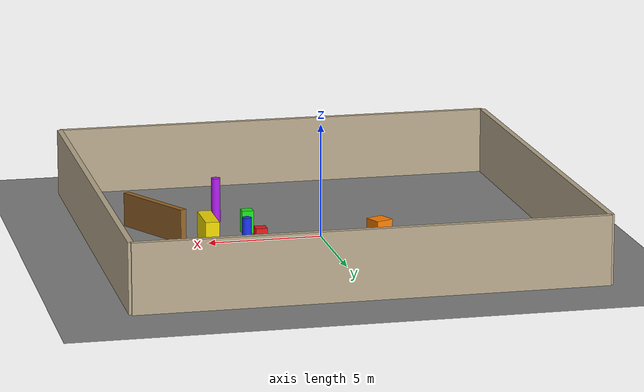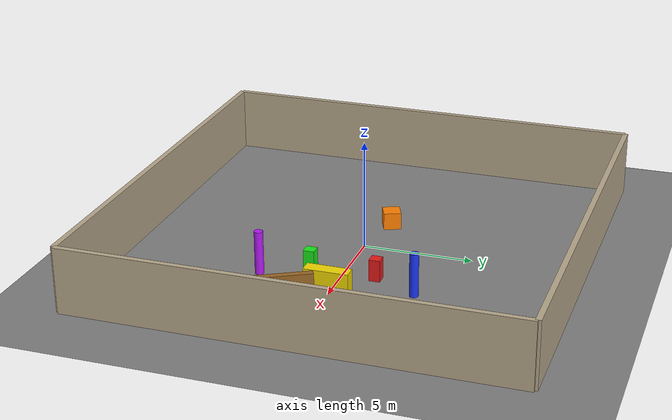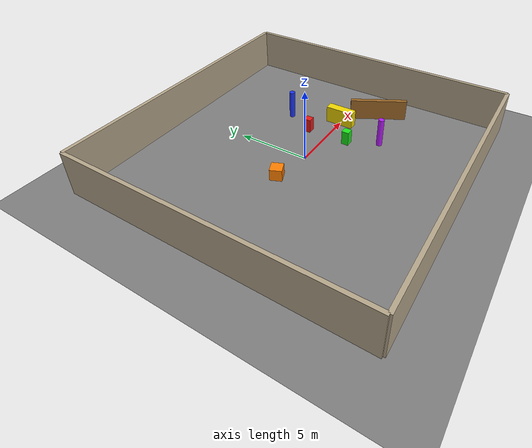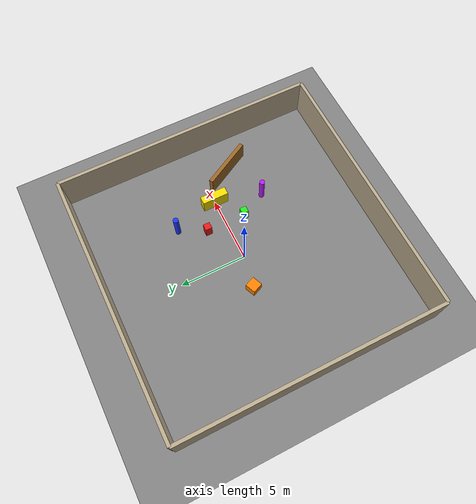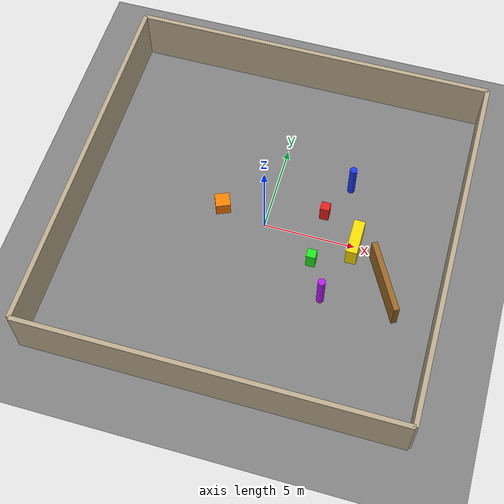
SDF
<?xml version="1.0"?>
<sdf version="1.8">
  <world name="warehouse">

    <!-- Physics -->
    <physics name="1ms" type="ignored">
      <max_step_size>0.001</max_step_size>
      <real_time_factor>1.0</real_time_factor>
    </physics>

    <!-- Required world plugins -->
    <plugin filename="gz-sim-physics-system"
            name="gz::sim::systems::Physics"/>
    <plugin filename="gz-sim-user-commands-system"
            name="gz::sim::systems::UserCommands"/>
    <plugin filename="gz-sim-scene-broadcaster-system"
            name="gz::sim::systems::SceneBroadcaster"/>
    <plugin filename="gz-sim-imu-system"
            name="gz::sim::systems::Imu"/>

    <!-- Sensors system (ogre, not ogre2, for VM/WSL stability) -->
    <plugin filename="gz-sim-sensors-system"
            name="gz::sim::systems::Sensors">
      <render_engine>ogre</render_engine>
    </plugin>

    <!-- Sun -->
    <light name="sun" type="directional">
      <cast_shadows>true</cast_shadows>
      <pose>0 0 10 0 0 0</pose>
      <diffuse>0.9 0.9 0.9 1</diffuse>
      <specular>0.3 0.3 0.3 1</specular>
      <direction>-0.5 0.1 -0.9</direction>
    </light>

    <!-- Ambient fill light so shadows aren't too dark -->
    <light name="ambient_fill" type="directional">
      <pose>0 0 8 0 0 0</pose>
      <diffuse>0.4 0.4 0.4 1</diffuse>
      <specular>0.0 0.0 0.0 1</specular>
      <direction>0.5 -0.1 -0.9</direction>
      <cast_shadows>false</cast_shadows>
    </light>

    <!-- ═══════════════════════════════════════
         GROUND PLANE  –  concrete grey
    ═══════════════════════════════════════ -->
    <model name="ground_plane">
      <static>true</static>
      <link name="link">
        <collision name="collision">
          <geometry>
            <plane><normal>0 0 1</normal><size>50 50</size></plane>
          </geometry>
          <surface>
            <friction><ode><mu>1.0</mu><mu2>1.0</mu2></ode></friction>
          </surface>
        </collision>
        <visual name="visual">
          <geometry>
            <plane><normal>0 0 1</normal><size>50 50</size></plane>
          </geometry>
          <material>
            <ambient>0.38 0.38 0.38 1</ambient>
            <diffuse>0.5 0.5 0.5 1</diffuse>
            <specular>0.1 0.1 0.1 1</specular>
          </material>
        </visual>
      </link>
    </model>

    <!-- ═══════════════════════════════════════
         WAREHOUSE WALLS
    ═══════════════════════════════════════ -->

    <!-- North wall -->
    <model name="wall_north">
      <static>true</static>
      <pose>0 10 1.5 0 0 0</pose>
      <link name="link">
        <collision name="collision">
          <geometry><box><size>20 0.25 3.0</size></box></geometry>
        </collision>
        <visual name="visual">
          <geometry><box><size>20 0.25 3.0</size></box></geometry>
          <material>
            <ambient>0.62 0.56 0.45 1</ambient>
            <diffuse>0.72 0.66 0.55 1</diffuse>
          </material>
        </visual>
      </link>
    </model>

    <!-- South wall -->
    <model name="wall_south">
      <static>true</static>
      <pose>0 -10 1.5 0 0 0</pose>
      <link name="link">
        <collision name="collision">
          <geometry><box><size>20 0.25 3.0</size></box></geometry>
        </collision>
        <visual name="visual">
          <geometry><box><size>20 0.25 3.0</size></box></geometry>
          <material>
            <ambient>0.62 0.56 0.45 1</ambient>
            <diffuse>0.72 0.66 0.55 1</diffuse>
          </material>
        </visual>
      </link>
    </model>

    <!-- East wall -->
    <model name="wall_east">
      <static>true</static>
      <pose>10 0 1.5 0 0 0</pose>
      <link name="link">
        <collision name="collision">
          <geometry><box><size>0.25 20 3.0</size></box></geometry>
        </collision>
        <visual name="visual">
          <geometry><box><size>0.25 20 3.0</size></box></geometry>
          <material>
            <ambient>0.62 0.56 0.45 1</ambient>
            <diffuse>0.72 0.66 0.55 1</diffuse>
          </material>
        </visual>
      </link>
    </model>

    <!-- West wall -->
    <model name="wall_west">
      <static>true</static>
      <pose>-10 0 1.5 0 0 0</pose>
      <link name="link">
        <collision name="collision">
          <geometry><box><size>0.25 20 3.0</size></box></geometry>
        </collision>
        <visual name="visual">
          <geometry><box><size>0.25 20 3.0</size></box></geometry>
          <material>
            <ambient>0.62 0.56 0.45 1</ambient>
            <diffuse>0.72 0.66 0.55 1</diffuse>
          </material>
        </visual>
      </link>
    </model>

    <!-- BOX A – 3m ahead, right side  (RED) -->
    <model name="box_A">
      <static>true</static>
      <pose>3.0 1.5 0.5 0 0 0</pose>
      <link name="link">
        <collision name="collision">
          <geometry><box><size>0.5 0.5 1.0</size></box></geometry>
        </collision>
        <visual name="visual">
          <geometry><box><size>0.5 0.5 1.0</size></box></geometry>
          <material>
            <ambient>0.8 0.1 0.1 1</ambient>
            <diffuse>0.9 0.1 0.1 1</diffuse>
          </material>
        </visual>
      </link>
    </model>

    <!-- BOX B – 3m ahead, left side  (GREEN) -->
    <model name="box_B">
      <static>true</static>
      <pose>3.0 -1.5 0.5 0 0 0</pose>
      <link name="link">
        <collision name="collision">
          <geometry><box><size>0.5 0.5 1.0</size></box></geometry>
        </collision>
        <visual name="visual">
          <geometry><box><size>0.5 0.5 1.0</size></box></geometry>
          <material>
            <ambient>0.1 0.8 0.1 1</ambient>
            <diffuse>0.1 0.9 0.1 1</diffuse>
          </material>
        </visual>
      </link>
    </model>

    <!-- BOX C – 5m ahead, centre  (YELLOW) — corridor blocker -->
    <model name="box_C">
      <static>true</static>
      <pose>5.0 0.0 0.6 0 0 0</pose>
      <link name="link">
        <collision name="collision">
          <geometry><box><size>0.6 2.0 1.2</size></box></geometry>
        </collision>
        <visual name="visual">
          <geometry><box><size>0.6 2.0 1.2</size></box></geometry>
          <material>
            <ambient>0.85 0.75 0.0 1</ambient>
            <diffuse>0.95 0.85 0.0 1</diffuse>
          </material>
        </visual>
      </link>
    </model>

    <!-- BOX D – 2m behind  (ORANGE) -->
    <model name="box_D">
      <static>true</static>
      <pose>-2.5 0.5 0.4 0 0 0.4</pose>
      <link name="link">
        <collision name="collision">
          <geometry><box><size>0.8 0.8 0.8</size></box></geometry>
        </collision>
        <visual name="visual">
          <geometry><box><size>0.8 0.8 0.8</size></box></geometry>
          <material>
            <ambient>0.9 0.45 0.0 1</ambient>
            <diffuse>1.0 0.5 0.0 1</diffuse>
          </material>
        </visual>
      </link>
    </model>

    <!-- PILLAR 1 – right side at 4m  (BLUE cylinder) -->
    <model name="pillar_1">
      <static>true</static>
      <pose>4.0 3.5 1.0 0 0 0</pose>
      <link name="link">
        <collision name="collision">
          <geometry><cylinder><radius>0.2</radius><length>2.0</length></cylinder></geometry>
        </collision>
        <visual name="visual">
          <geometry><cylinder><radius>0.2</radius><length>2.0</length></cylinder></geometry>
          <material>
            <ambient>0.1 0.2 0.85 1</ambient>
            <diffuse>0.1 0.2 0.95 1</diffuse>
          </material>
        </visual>
      </link>
    </model>

    <!-- PILLAR 2 – left side at 4m  (PURPLE cylinder) -->
    <model name="pillar_2">
      <static>true</static>
      <pose>4.0 -3.5 1.0 0 0 0</pose>
      <link name="link">
        <collision name="collision">
          <geometry><cylinder><radius>0.2</radius><length>2.0</length></cylinder></geometry>
        </collision>
        <visual name="visual">
          <geometry><cylinder><radius>0.2</radius><length>2.0</length></cylinder></geometry>
          <material>
            <ambient>0.6 0.1 0.85 1</ambient>
            <diffuse>0.7 0.1 0.95 1</diffuse>
          </material>
        </visual>
      </link>
    </model>

    <!-- SHELF RACK – long wall-like obstacle at 7m  (BROWN) -->
    <model name="shelf_rack">
      <static>true</static>
      <pose>7.0 -2.0 0.75 0 0 0.5</pose>
      <link name="link">
        <collision name="collision">
          <geometry><box><size>0.3 4.0 1.5</size></box></geometry>
        </collision>
        <visual name="visual">
          <geometry><box><size>0.3 4.0 1.5</size></box></geometry>
          <material>
            <ambient>0.5 0.3 0.1 1</ambient>
            <diffuse>0.6 0.4 0.15 1</diffuse>
          </material>
        </visual>
      </link>
    </model>

  </world>
</sdf>
